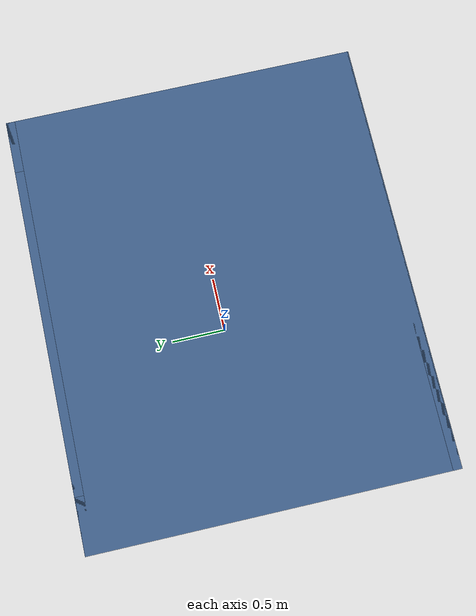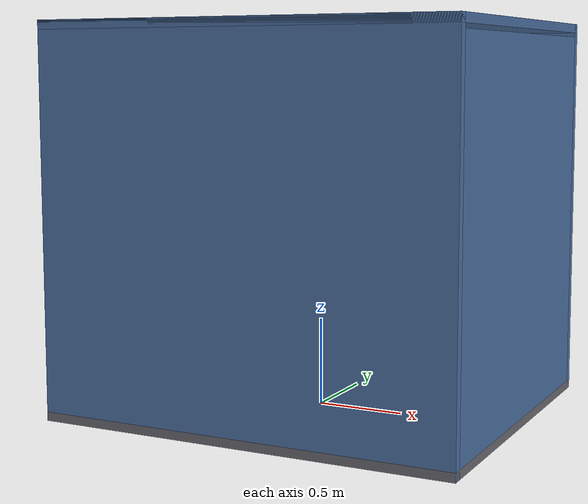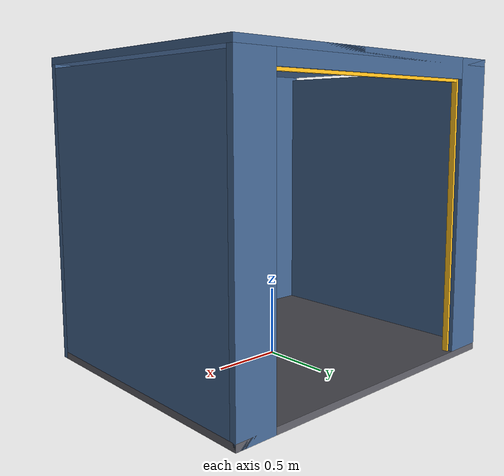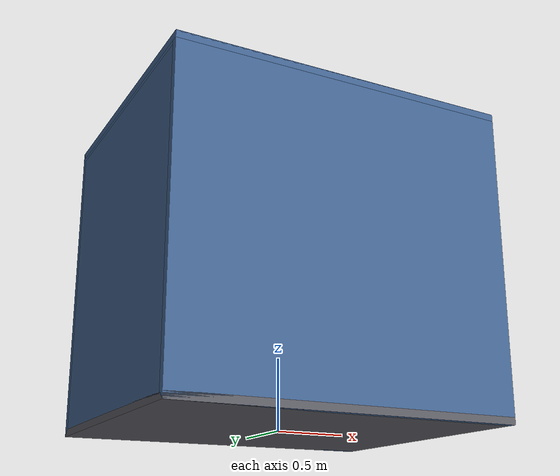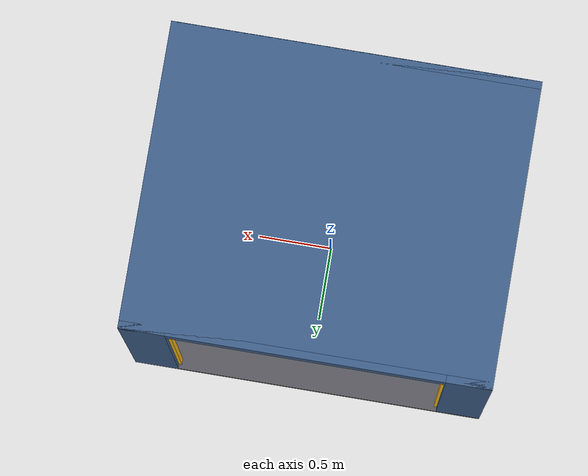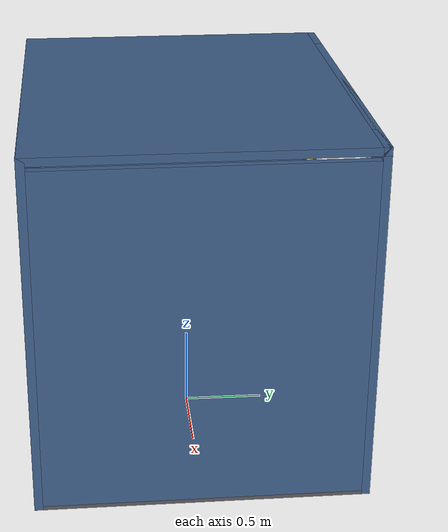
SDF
<?xml version="1.0"?>
<sdf version="1.6">
  <!-- Side-open cargo container. Origin: centre of bottom face (z=0 on ground).
       Outer 2.4 x 2.0 x 2.2 m; opening 1.8 x 2.0 m on +Y face. -->
  <model name="airport_container">
    <static>true</static>
    <link name="container_link">

      <!-- Floor -->
      <visual name="floor_visual">
        <pose>0 0 0.025 0 0 0</pose>
        <geometry><box><size>2.4 2.0 0.05</size></box></geometry>
        <material>
          <ambient>0.25 0.25 0.28 1</ambient>
          <diffuse>0.35 0.35 0.38 1</diffuse>
        </material>
      </visual>
      <collision name="floor_collision">
        <pose>0 0 0.025 0 0 0</pose>
        <geometry><box><size>2.4 2.0 0.05</size></box></geometry>
      </collision>

      <!-- Back wall (-Y) -->
      <visual name="back_wall_visual">
        <pose>0 -0.975 1.1 0 0 0</pose>
        <geometry><box><size>2.4 0.05 2.2</size></box></geometry>
        <material>
          <ambient>0.15 0.22 0.35 1</ambient>
          <diffuse>0.25 0.38 0.55 1</diffuse>
        </material>
      </visual>
      <collision name="back_wall_collision">
        <pose>0 -0.975 1.1 0 0 0</pose>
        <geometry><box><size>2.4 0.05 2.2</size></box></geometry>
      </collision>

      <!-- Left wall (-X) -->
      <visual name="left_wall_visual">
        <pose>-1.175 0 1.075 0 0 0</pose>
        <geometry><box><size>0.05 1.9 2.1</size></box></geometry>
        <material>
          <ambient>0.15 0.22 0.35 1</ambient>
          <diffuse>0.25 0.38 0.55 1</diffuse>
        </material>
      </visual>
      <collision name="left_wall_collision">
        <pose>-1.175 0 1.075 0 0 0</pose>
        <geometry><box><size>0.05 1.9 2.1</size></box></geometry>
      </collision>

      <!-- Right wall (+X) -->
      <visual name="right_wall_visual">
        <pose>1.175 0 1.075 0 0 0</pose>
        <geometry><box><size>0.05 1.9 2.1</size></box></geometry>
        <material>
          <ambient>0.15 0.22 0.35 1</ambient>
          <diffuse>0.25 0.38 0.55 1</diffuse>
        </material>
      </visual>
      <collision name="right_wall_collision">
        <pose>1.175 0 1.075 0 0 0</pose>
        <geometry><box><size>0.05 1.9 2.1</size></box></geometry>
      </collision>

      <!-- Roof -->
      <visual name="roof_visual">
        <pose>0 0 2.175 0 0 0</pose>
        <geometry><box><size>2.4 2.0 0.05</size></box></geometry>
        <material>
          <ambient>0.15 0.22 0.35 1</ambient>
          <diffuse>0.25 0.38 0.55 1</diffuse>
        </material>
      </visual>
      <collision name="roof_collision">
        <pose>0 0 2.175 0 0 0</pose>
        <geometry><box><size>2.4 2.0 0.05</size></box></geometry>
      </collision>

      <!-- Front wall (+Y) — left pillar -->
      <visual name="front_left_pillar_visual">
        <pose>-1.05 0.975 1.1 0 0 0</pose>
        <geometry><box><size>0.3 0.05 2.2</size></box></geometry>
        <material>
          <ambient>0.15 0.22 0.35 1</ambient>
          <diffuse>0.25 0.38 0.55 1</diffuse>
        </material>
      </visual>
      <collision name="front_left_pillar_collision">
        <pose>-1.05 0.975 1.1 0 0 0</pose>
        <geometry><box><size>0.3 0.05 2.2</size></box></geometry>
      </collision>

      <!-- Front wall (+Y) — right pillar -->
      <visual name="front_right_pillar_visual">
        <pose>1.05 0.975 1.1 0 0 0</pose>
        <geometry><box><size>0.3 0.05 2.2</size></box></geometry>
        <material>
          <ambient>0.15 0.22 0.35 1</ambient>
          <diffuse>0.25 0.38 0.55 1</diffuse>
        </material>
      </visual>
      <collision name="front_right_pillar_collision">
        <pose>1.05 0.975 1.1 0 0 0</pose>
        <geometry><box><size>0.3 0.05 2.2</size></box></geometry>
      </collision>

      <!-- Front wall (+Y) — top lintel above opening -->
      <visual name="front_lintel_visual">
        <pose>0 0.975 2.125 0 0 0</pose>
        <geometry><box><size>1.8 0.05 0.15</size></box></geometry>
        <material>
          <ambient>0.15 0.22 0.35 1</ambient>
          <diffuse>0.25 0.38 0.55 1</diffuse>
        </material>
      </visual>
      <collision name="front_lintel_collision">
        <pose>0 0.975 2.125 0 0 0</pose>
        <geometry><box><size>1.8 0.05 0.15</size></box></geometry>
      </collision>

      <!-- Opening frame trim (visual only) -->
      <visual name="opening_frame_left_visual">
        <pose>-0.9 0.95 1.05 0 0 0</pose>
        <geometry><box><size>0.04 0.04 2.0</size></box></geometry>
        <material>
          <ambient>0.8 0.6 0.1 1</ambient>
          <diffuse>1.0 0.75 0.1 1</diffuse>
        </material>
      </visual>
      <visual name="opening_frame_right_visual">
        <pose>0.9 0.95 1.05 0 0 0</pose>
        <geometry><box><size>0.04 0.04 2.0</size></box></geometry>
        <material>
          <ambient>0.8 0.6 0.1 1</ambient>
          <diffuse>1.0 0.75 0.1 1</diffuse>
        </material>
      </visual>
      <visual name="opening_frame_top_visual">
        <pose>0 0.95 2.05 0 0 0</pose>
        <geometry><box><size>1.8 0.04 0.04</size></box></geometry>
        <material>
          <ambient>0.8 0.6 0.1 1</ambient>
          <diffuse>1.0 0.75 0.1 1</diffuse>
        </material>
      </visual>

    </link>
  </model>
</sdf>
